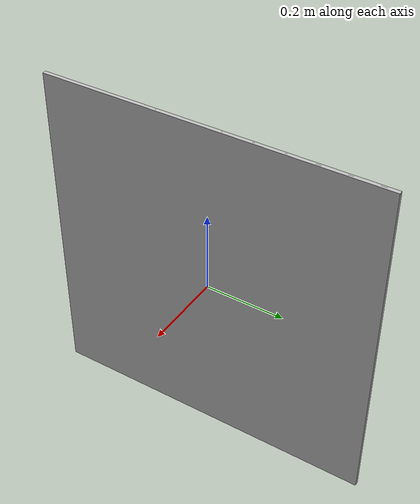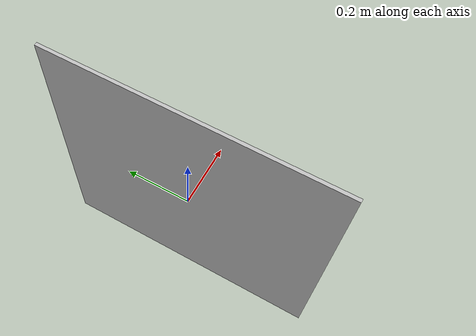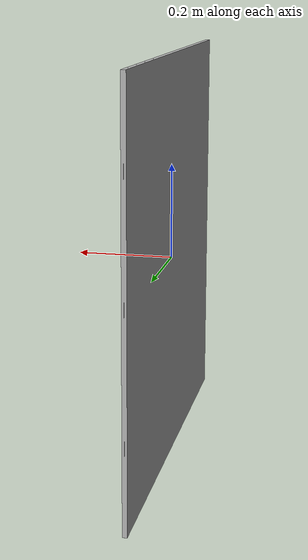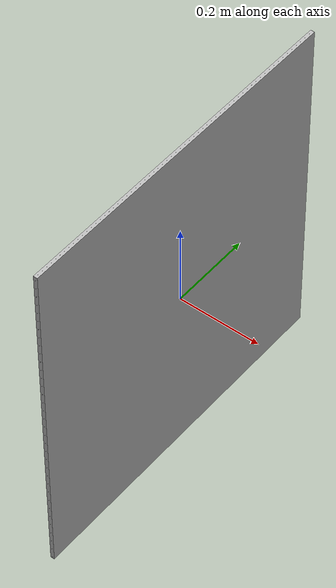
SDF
<?xml version="1.0"?>
<sdf version="1.6">
  <model name="stag_marker">
    <link name="link">
      <inertial>
        <pose>0 0 0 0 0 0</pose>
        <mass>0.001</mass>
        <inertia>
          <ixx>3.7499999999999997e-06</ixx>
          <ixy>0.0</ixy>
          <ixz>0.0</ixz>
          <iyy>1.8750008333333333e-06</iyy>
          <iyz>0.0</iyz>
          <izz>1.8750008333333333e-06</izz>
        </inertia>
      </inertial>
      <visual name="front_visual">
        <pose>0.00005 0 0 0 0 0</pose>
        <geometry>
          <box>
            <size>0.01 0.86 0.86</size>
          </box>
        </geometry>
        <material>
          <script>
            <uri>model://stag_marker/materials/scripts</uri>
            <uri>model://stag_marker/materials/textures</uri>
            <name>Marker</name>
          </script>
        </material>
      </visual>
      <!-- Hide the marker from the back -->
      <visual name="rear_visual">
        <pose>-0.00005 0 0 0 0 0</pose>
        <geometry>
          <box>
            <size>0.0001 0.86 0.86</size>
          </box>
        </geometry>
      </visual>
      <collision name="collision">
        <pose>0 0 0 0 0 0</pose>
        <geometry>
          <box>
            <size>0.01 0.86 0.86</size>
          </box>
        </geometry>
      </collision>
    </link>
  </model>
</sdf>
